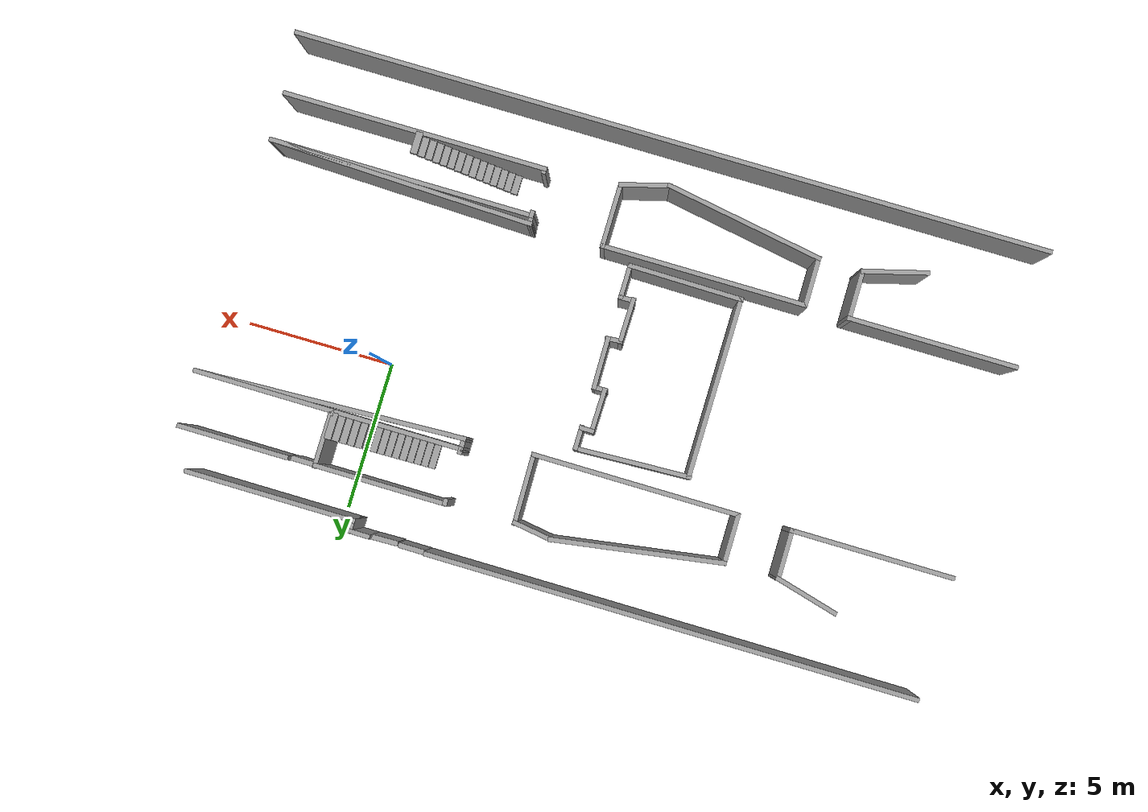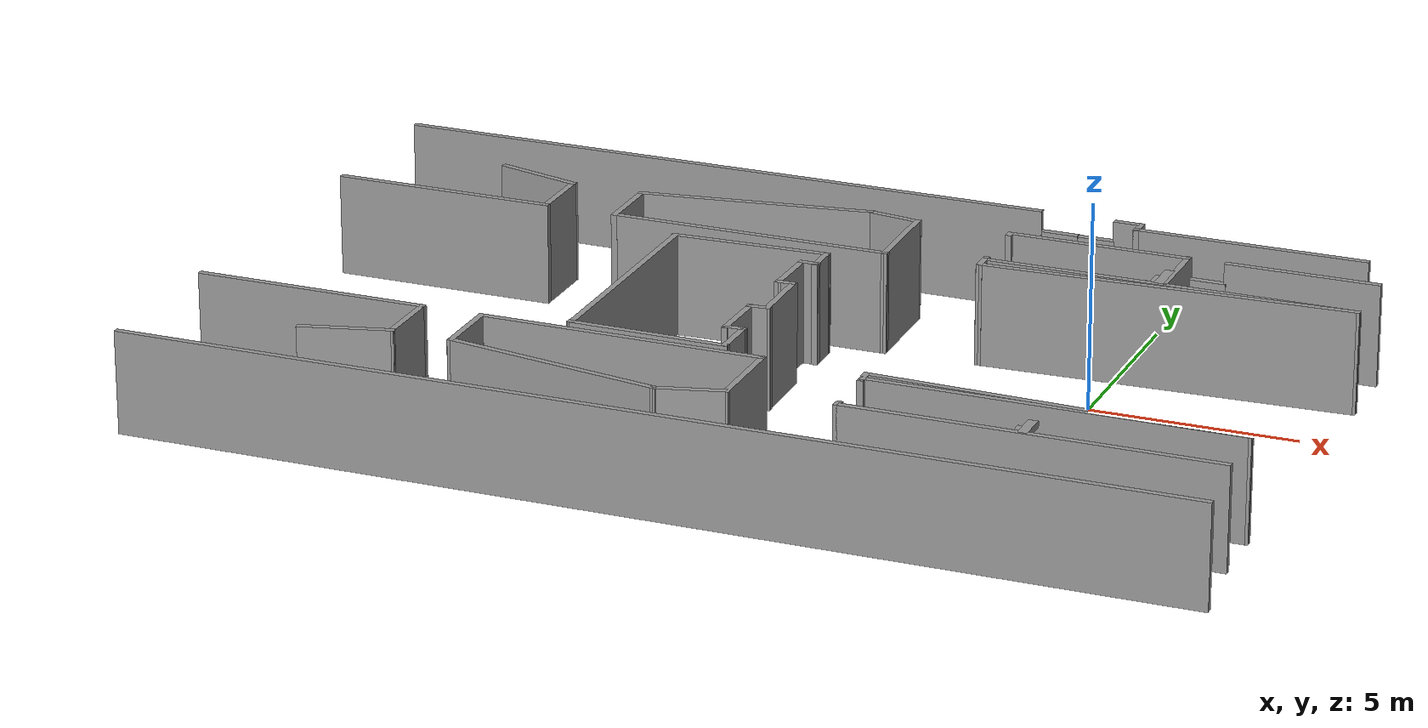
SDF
<?xml version='1.0'?>
<sdf version='1.7'>
  <model name='Nuri3rd'>
    <pose>-6.98701 -1.9804 0 0 -0 0</pose>
    <link name='Door_1'>
      <collision name='Door_1_Collision'>
        <geometry>
          <box>
            <size>0.9 0.17 2</size>
          </box>
        </geometry>
        <pose>0 0 1 0 -0 0</pose>
      </collision>
      <visual name='Door_1_Visual'>
        <pose>0 0 1 0 -0 0</pose>
        <geometry>
          <box>
            <size>0.9 0.17 2</size>
          </box>
        </geometry>
        <material>
          <script>
            <uri>file://media/materials/scripts/gazebo.material</uri>
            <name>Gazebo/Grey</name>
          </script>
        </material>
      </visual>
      <pose>5.26471 7.52409 0 0 -0 -3.12165</pose>
    </link>
    <link name='Door_2'>
      <collision name='Door_2_Collision'>
        <geometry>
          <box>
            <size>0.9 0.17 2</size>
          </box>
        </geometry>
        <pose>0 0 1 0 -0 0</pose>
      </collision>
      <visual name='Door_2_Visual'>
        <pose>0 0 1 0 -0 0</pose>
        <geometry>
          <box>
            <size>0.9 0.17 2</size>
          </box>
        </geometry>
        <material>
          <script>
            <uri>file://media/materials/scripts/gazebo.material</uri>
            <name>Gazebo/Grey</name>
          </script>
        </material>
      </visual>
      <pose>4.34319 7.54075 0 0 -0 0</pose>
    </link>
    <link name='Door_3'>
      <collision name='Door_3_Collision'>
        <geometry>
          <box>
            <size>0.9 0.17 2</size>
          </box>
        </geometry>
        <pose>0 0 1 0 -0 0</pose>
      </collision>
      <visual name='Door_3_Visual'>
        <pose>0 0 1 0 -0 0</pose>
        <geometry>
          <box>
            <size>0.9 0.17 2</size>
          </box>
        </geometry>
        <material>
          <script>
            <uri>file://media/materials/scripts/gazebo.material</uri>
            <name>Gazebo/Grey</name>
          </script>
        </material>
      </visual>
      <pose>8.55431 5.83089 0 0 -0 0</pose>
    </link>
    <link name='Stairs_0'>
      <visual name='Stairs_0_Visual_0'>
        <pose>4.68372 4.4736 0.083333 0 -0 1.5708</pose>
        <geometry>
          <box>
            <size>0.885649 0.231046 0.166667</size>
          </box>
        </geometry>
        <material>
          <script>
            <uri>file://media/materials/scripts/gazebo.material</uri>
            <name>Gazebo/Grey</name>
          </script>
          <ambient>1 1 1 1</ambient>
        </material>
        <meta>
          <layer>0</layer>
        </meta>
      </visual>
      <collision name='Stairs_0_Collision_0'>
        <geometry>
          <box>
            <size>0.885649 0.231046 0.166667</size>
          </box>
        </geometry>
        <pose>4.68372 4.4736 0.083333 0 -0 1.5708</pose>
      </collision>
      <visual name='Stairs_0_Visual_1'>
        <pose>4.91477 4.4736 0.25 0 -0 1.5708</pose>
        <geometry>
          <box>
            <size>0.885649 0.231046 0.166667</size>
          </box>
        </geometry>
        <material>
          <script>
            <uri>file://media/materials/scripts/gazebo.material</uri>
            <name>Gazebo/Grey</name>
          </script>
          <ambient>1 1 1 1</ambient>
        </material>
        <meta>
          <layer>0</layer>
        </meta>
      </visual>
      <collision name='Stairs_0_Collision_1'>
        <geometry>
          <box>
            <size>0.885649 0.231046 0.166667</size>
          </box>
        </geometry>
        <pose>4.91477 4.4736 0.25 0 -0 1.5708</pose>
      </collision>
      <visual name='Stairs_0_Visual_2'>
        <pose>5.14581 4.47361 0.416667 0 -0 1.5708</pose>
        <geometry>
          <box>
            <size>0.885649 0.231046 0.166667</size>
          </box>
        </geometry>
        <material>
          <script>
            <uri>file://media/materials/scripts/gazebo.material</uri>
            <name>Gazebo/Grey</name>
          </script>
          <ambient>1 1 1 1</ambient>
        </material>
        <meta>
          <layer>0</layer>
        </meta>
      </visual>
      <collision name='Stairs_0_Collision_2'>
        <geometry>
          <box>
            <size>0.885649 0.231046 0.166667</size>
          </box>
        </geometry>
        <pose>5.14581 4.47361 0.416667 0 -0 1.5708</pose>
      </collision>
      <visual name='Stairs_0_Visual_3'>
        <pose>5.37686 4.47361 0.583333 0 -0 1.5708</pose>
        <geometry>
          <box>
            <size>0.885649 0.231046 0.166667</size>
          </box>
        </geometry>
        <material>
          <script>
            <uri>file://media/materials/scripts/gazebo.material</uri>
            <name>Gazebo/Grey</name>
          </script>
          <ambient>1 1 1 1</ambient>
        </material>
        <meta>
          <layer>0</layer>
        </meta>
      </visual>
      <collision name='Stairs_0_Collision_3'>
        <geometry>
          <box>
            <size>0.885649 0.231046 0.166667</size>
          </box>
        </geometry>
        <pose>5.37686 4.47361 0.583333 0 -0 1.5708</pose>
      </collision>
      <visual name='Stairs_0_Visual_4'>
        <pose>5.60791 4.47361 0.75 0 -0 1.5708</pose>
        <geometry>
          <box>
            <size>0.885649 0.231046 0.166667</size>
          </box>
        </geometry>
        <material>
          <script>
            <uri>file://media/materials/scripts/gazebo.material</uri>
            <name>Gazebo/Grey</name>
          </script>
          <ambient>1 1 1 1</ambient>
        </material>
        <meta>
          <layer>0</layer>
        </meta>
      </visual>
      <collision name='Stairs_0_Collision_4'>
        <geometry>
          <box>
            <size>0.885649 0.231046 0.166667</size>
          </box>
        </geometry>
        <pose>5.60791 4.47361 0.75 0 -0 1.5708</pose>
      </collision>
      <visual name='Stairs_0_Visual_5'>
        <pose>5.83895 4.47361 0.916667 0 -0 1.5708</pose>
        <geometry>
          <box>
            <size>0.885649 0.231046 0.166667</size>
          </box>
        </geometry>
        <material>
          <script>
            <uri>file://media/materials/scripts/gazebo.material</uri>
            <name>Gazebo/Grey</name>
          </script>
          <ambient>1 1 1 1</ambient>
        </material>
        <meta>
          <layer>0</layer>
        </meta>
      </visual>
      <collision name='Stairs_0_Collision_5'>
        <geometry>
          <box>
            <size>0.885649 0.231046 0.166667</size>
          </box>
        </geometry>
        <pose>5.83895 4.47361 0.916667 0 -0 1.5708</pose>
      </collision>
      <visual name='Stairs_0_Visual_6'>
        <pose>6.07 4.47361 1.08333 0 -0 1.5708</pose>
        <geometry>
          <box>
            <size>0.885649 0.231046 0.166667</size>
          </box>
        </geometry>
        <material>
          <script>
            <uri>file://media/materials/scripts/gazebo.material</uri>
            <name>Gazebo/Grey</name>
          </script>
          <ambient>1 1 1 1</ambient>
        </material>
        <meta>
          <layer>0</layer>
        </meta>
      </visual>
      <collision name='Stairs_0_Collision_6'>
        <geometry>
          <box>
            <size>0.885649 0.231046 0.166667</size>
          </box>
        </geometry>
        <pose>6.07 4.47361 1.08333 0 -0 1.5708</pose>
      </collision>
      <visual name='Stairs_0_Visual_7'>
        <pose>6.30105 4.47361 1.25 0 -0 1.5708</pose>
        <geometry>
          <box>
            <size>0.885649 0.231046 0.166667</size>
          </box>
        </geometry>
        <material>
          <script>
            <uri>file://media/materials/scripts/gazebo.material</uri>
            <name>Gazebo/Grey</name>
          </script>
          <ambient>1 1 1 1</ambient>
        </material>
        <meta>
          <layer>0</layer>
        </meta>
      </visual>
      <collision name='Stairs_0_Collision_7'>
        <geometry>
          <box>
            <size>0.885649 0.231046 0.166667</size>
          </box>
        </geometry>
        <pose>6.30105 4.47361 1.25 0 -0 1.5708</pose>
      </collision>
      <visual name='Stairs_0_Visual_8'>
        <pose>6.53209 4.47361 1.41667 0 -0 1.5708</pose>
        <geometry>
          <box>
            <size>0.885649 0.231046 0.166667</size>
          </box>
        </geometry>
        <material>
          <script>
            <uri>file://media/materials/scripts/gazebo.material</uri>
            <name>Gazebo/Grey</name>
          </script>
          <ambient>1 1 1 1</ambient>
        </material>
        <meta>
          <layer>0</layer>
        </meta>
      </visual>
      <collision name='Stairs_0_Collision_8'>
        <geometry>
          <box>
            <size>0.885649 0.231046 0.166667</size>
          </box>
        </geometry>
        <pose>6.53209 4.47361 1.41667 0 -0 1.5708</pose>
      </collision>
      <visual name='Stairs_0_Visual_9'>
        <pose>6.76314 4.47361 1.58333 0 -0 1.5708</pose>
        <geometry>
          <box>
            <size>0.885649 0.231046 0.166667</size>
          </box>
        </geometry>
        <material>
          <script>
            <uri>file://media/materials/scripts/gazebo.material</uri>
            <name>Gazebo/Grey</name>
          </script>
          <ambient>1 1 1 1</ambient>
        </material>
        <meta>
          <layer>0</layer>
        </meta>
      </visual>
      <collision name='Stairs_0_Collision_9'>
        <geometry>
          <box>
            <size>0.885649 0.231046 0.166667</size>
          </box>
        </geometry>
        <pose>6.76314 4.47361 1.58333 0 -0 1.5708</pose>
      </collision>
      <visual name='Stairs_0_Visual_10'>
        <pose>6.99419 4.47361 1.75 0 -0 1.5708</pose>
        <geometry>
          <box>
            <size>0.885649 0.231046 0.166667</size>
          </box>
        </geometry>
        <material>
          <script>
            <uri>file://media/materials/scripts/gazebo.material</uri>
            <name>Gazebo/Grey</name>
          </script>
          <ambient>1 1 1 1</ambient>
        </material>
        <meta>
          <layer>0</layer>
        </meta>
      </visual>
      <collision name='Stairs_0_Collision_10'>
        <geometry>
          <box>
            <size>0.885649 0.231046 0.166667</size>
          </box>
        </geometry>
        <pose>6.99419 4.47361 1.75 0 -0 1.5708</pose>
      </collision>
      <visual name='Stairs_0_Visual_11'>
        <pose>7.22523 4.47361 1.91667 0 -0 1.5708</pose>
        <geometry>
          <box>
            <size>0.885649 0.231046 0.166667</size>
          </box>
        </geometry>
        <material>
          <script>
            <uri>file://media/materials/scripts/gazebo.material</uri>
            <name>Gazebo/Grey</name>
          </script>
          <ambient>1 1 1 1</ambient>
        </material>
        <meta>
          <layer>0</layer>
        </meta>
      </visual>
      <collision name='Stairs_0_Collision_11'>
        <geometry>
          <box>
            <size>0.885649 0.231046 0.166667</size>
          </box>
        </geometry>
        <pose>7.22523 4.47361 1.91667 0 -0 1.5708</pose>
      </collision>
      <visual name='Stairs_0_Visual_12'>
        <pose>7.45628 4.47361 2.08333 0 -0 1.5708</pose>
        <geometry>
          <box>
            <size>0.885649 0.231046 0.166667</size>
          </box>
        </geometry>
        <material>
          <script>
            <uri>file://media/materials/scripts/gazebo.material</uri>
            <name>Gazebo/Grey</name>
          </script>
          <ambient>1 1 1 1</ambient>
        </material>
        <meta>
          <layer>0</layer>
        </meta>
      </visual>
      <collision name='Stairs_0_Collision_12'>
        <geometry>
          <box>
            <size>0.885649 0.231046 0.166667</size>
          </box>
        </geometry>
        <pose>7.45628 4.47361 2.08333 0 -0 1.5708</pose>
      </collision>
      <visual name='Stairs_0_Visual_13'>
        <pose>7.68733 4.47361 2.25 0 -0 1.5708</pose>
        <geometry>
          <box>
            <size>0.885649 0.231046 0.166667</size>
          </box>
        </geometry>
        <material>
          <script>
            <uri>file://media/materials/scripts/gazebo.material</uri>
            <name>Gazebo/Grey</name>
          </script>
          <ambient>1 1 1 1</ambient>
        </material>
        <meta>
          <layer>0</layer>
        </meta>
      </visual>
      <collision name='Stairs_0_Collision_13'>
        <geometry>
          <box>
            <size>0.885649 0.231046 0.166667</size>
          </box>
        </geometry>
        <pose>7.68733 4.47361 2.25 0 -0 1.5708</pose>
      </collision>
      <visual name='Stairs_0_Visual_14'>
        <pose>7.91837 4.47361 2.41667 0 -0 1.5708</pose>
        <geometry>
          <box>
            <size>0.885649 0.231046 0.166667</size>
          </box>
        </geometry>
        <material>
          <script>
            <uri>file://media/materials/scripts/gazebo.material</uri>
            <name>Gazebo/Grey</name>
          </script>
          <ambient>1 1 1 1</ambient>
        </material>
        <meta>
          <layer>0</layer>
        </meta>
      </visual>
      <collision name='Stairs_0_Collision_14'>
        <geometry>
          <box>
            <size>0.885649 0.231046 0.166667</size>
          </box>
        </geometry>
        <pose>7.91837 4.47361 2.41667 0 -0 1.5708</pose>
      </collision>
    </link>
    <link name='Stairs_1'>
      <visual name='Stairs_1_Visual_0'>
        <pose>4.69852 -5.14387 0.083333 0 -0 1.5708</pose>
        <geometry>
          <box>
            <size>0.745563 0.233333 0.166667</size>
          </box>
        </geometry>
        <material>
          <script>
            <uri>file://media/materials/scripts/gazebo.material</uri>
            <name>Gazebo/Grey</name>
          </script>
          <ambient>1 1 1 1</ambient>
        </material>
        <meta>
          <layer>0</layer>
        </meta>
      </visual>
      <collision name='Stairs_1_Collision_0'>
        <geometry>
          <box>
            <size>0.745563 0.233333 0.166667</size>
          </box>
        </geometry>
        <pose>4.69852 -5.14387 0.083333 0 -0 1.5708</pose>
      </collision>
      <visual name='Stairs_1_Visual_1'>
        <pose>4.93185 -5.14387 0.25 0 -0 1.5708</pose>
        <geometry>
          <box>
            <size>0.745563 0.233333 0.166667</size>
          </box>
        </geometry>
        <material>
          <script>
            <uri>file://media/materials/scripts/gazebo.material</uri>
            <name>Gazebo/Grey</name>
          </script>
          <ambient>1 1 1 1</ambient>
        </material>
        <meta>
          <layer>0</layer>
        </meta>
      </visual>
      <collision name='Stairs_1_Collision_1'>
        <geometry>
          <box>
            <size>0.745563 0.233333 0.166667</size>
          </box>
        </geometry>
        <pose>4.93185 -5.14387 0.25 0 -0 1.5708</pose>
      </collision>
      <visual name='Stairs_1_Visual_2'>
        <pose>5.16519 -5.14387 0.416667 0 -0 1.5708</pose>
        <geometry>
          <box>
            <size>0.745563 0.233333 0.166667</size>
          </box>
        </geometry>
        <material>
          <script>
            <uri>file://media/materials/scripts/gazebo.material</uri>
            <name>Gazebo/Grey</name>
          </script>
          <ambient>1 1 1 1</ambient>
        </material>
        <meta>
          <layer>0</layer>
        </meta>
      </visual>
      <collision name='Stairs_1_Collision_2'>
        <geometry>
          <box>
            <size>0.745563 0.233333 0.166667</size>
          </box>
        </geometry>
        <pose>5.16519 -5.14387 0.416667 0 -0 1.5708</pose>
      </collision>
      <visual name='Stairs_1_Visual_3'>
        <pose>5.39852 -5.14387 0.583333 0 -0 1.5708</pose>
        <geometry>
          <box>
            <size>0.745563 0.233333 0.166667</size>
          </box>
        </geometry>
        <material>
          <script>
            <uri>file://media/materials/scripts/gazebo.material</uri>
            <name>Gazebo/Grey</name>
          </script>
          <ambient>1 1 1 1</ambient>
        </material>
        <meta>
          <layer>0</layer>
        </meta>
      </visual>
      <collision name='Stairs_1_Collision_3'>
        <geometry>
          <box>
            <size>0.745563 0.233333 0.166667</size>
          </box>
        </geometry>
        <pose>5.39852 -5.14387 0.583333 0 -0 1.5708</pose>
      </collision>
      <visual name='Stairs_1_Visual_4'>
        <pose>5.63185 -5.14387 0.75 0 -0 1.5708</pose>
        <geometry>
          <box>
            <size>0.745563 0.233333 0.166667</size>
          </box>
        </geometry>
        <material>
          <script>
            <uri>file://media/materials/scripts/gazebo.material</uri>
            <name>Gazebo/Grey</name>
          </script>
          <ambient>1 1 1 1</ambient>
        </material>
        <meta>
          <layer>0</layer>
        </meta>
      </visual>
      <collision name='Stairs_1_Collision_4'>
        <geometry>
          <box>
            <size>0.745563 0.233333 0.166667</size>
          </box>
        </geometry>
        <pose>5.63185 -5.14387 0.75 0 -0 1.5708</pose>
      </collision>
      <visual name='Stairs_1_Visual_5'>
        <pose>5.86519 -5.14387 0.916667 0 -0 1.5708</pose>
        <geometry>
          <box>
            <size>0.745563 0.233333 0.166667</size>
          </box>
        </geometry>
        <material>
          <script>
            <uri>file://media/materials/scripts/gazebo.material</uri>
            <name>Gazebo/Grey</name>
          </script>
          <ambient>1 1 1 1</ambient>
        </material>
        <meta>
          <layer>0</layer>
        </meta>
      </visual>
      <collision name='Stairs_1_Collision_5'>
        <geometry>
          <box>
            <size>0.745563 0.233333 0.166667</size>
          </box>
        </geometry>
        <pose>5.86519 -5.14387 0.916667 0 -0 1.5708</pose>
      </collision>
      <visual name='Stairs_1_Visual_6'>
        <pose>6.09852 -5.14387 1.08333 0 -0 1.5708</pose>
        <geometry>
          <box>
            <size>0.745563 0.233333 0.166667</size>
          </box>
        </geometry>
        <material>
          <script>
            <uri>file://media/materials/scripts/gazebo.material</uri>
            <name>Gazebo/Grey</name>
          </script>
          <ambient>1 1 1 1</ambient>
        </material>
        <meta>
          <layer>0</layer>
        </meta>
      </visual>
      <collision name='Stairs_1_Collision_6'>
        <geometry>
          <box>
            <size>0.745563 0.233333 0.166667</size>
          </box>
        </geometry>
        <pose>6.09852 -5.14387 1.08333 0 -0 1.5708</pose>
      </collision>
      <visual name='Stairs_1_Visual_7'>
        <pose>6.33185 -5.14387 1.25 0 -0 1.5708</pose>
        <geometry>
          <box>
            <size>0.745563 0.233333 0.166667</size>
          </box>
        </geometry>
        <material>
          <script>
            <uri>file://media/materials/scripts/gazebo.material</uri>
            <name>Gazebo/Grey</name>
          </script>
          <ambient>1 1 1 1</ambient>
        </material>
        <meta>
          <layer>0</layer>
        </meta>
      </visual>
      <collision name='Stairs_1_Collision_7'>
        <geometry>
          <box>
            <size>0.745563 0.233333 0.166667</size>
          </box>
        </geometry>
        <pose>6.33185 -5.14387 1.25 0 -0 1.5708</pose>
      </collision>
      <visual name='Stairs_1_Visual_8'>
        <pose>6.56519 -5.14387 1.41667 0 -0 1.5708</pose>
        <geometry>
          <box>
            <size>0.745563 0.233333 0.166667</size>
          </box>
        </geometry>
        <material>
          <script>
            <uri>file://media/materials/scripts/gazebo.material</uri>
            <name>Gazebo/Grey</name>
          </script>
          <ambient>1 1 1 1</ambient>
        </material>
        <meta>
          <layer>0</layer>
        </meta>
      </visual>
      <collision name='Stairs_1_Collision_8'>
        <geometry>
          <box>
            <size>0.745563 0.233333 0.166667</size>
          </box>
        </geometry>
        <pose>6.56519 -5.14387 1.41667 0 -0 1.5708</pose>
      </collision>
      <visual name='Stairs_1_Visual_9'>
        <pose>6.79852 -5.14387 1.58333 0 -0 1.5708</pose>
        <geometry>
          <box>
            <size>0.745563 0.233333 0.166667</size>
          </box>
        </geometry>
        <material>
          <script>
            <uri>file://media/materials/scripts/gazebo.material</uri>
            <name>Gazebo/Grey</name>
          </script>
          <ambient>1 1 1 1</ambient>
        </material>
        <meta>
          <layer>0</layer>
        </meta>
      </visual>
      <collision name='Stairs_1_Collision_9'>
        <geometry>
          <box>
            <size>0.745563 0.233333 0.166667</size>
          </box>
        </geometry>
        <pose>6.79852 -5.14387 1.58333 0 -0 1.5708</pose>
      </collision>
      <visual name='Stairs_1_Visual_10'>
        <pose>7.03185 -5.14387 1.75 0 -0 1.5708</pose>
        <geometry>
          <box>
            <size>0.745563 0.233333 0.166667</size>
          </box>
        </geometry>
        <material>
          <script>
            <uri>file://media/materials/scripts/gazebo.material</uri>
            <name>Gazebo/Grey</name>
          </script>
          <ambient>1 1 1 1</ambient>
        </material>
        <meta>
          <layer>0</layer>
        </meta>
      </visual>
      <collision name='Stairs_1_Collision_10'>
        <geometry>
          <box>
            <size>0.745563 0.233333 0.166667</size>
          </box>
        </geometry>
        <pose>7.03185 -5.14387 1.75 0 -0 1.5708</pose>
      </collision>
      <visual name='Stairs_1_Visual_11'>
        <pose>7.26519 -5.14387 1.91667 0 -0 1.5708</pose>
        <geometry>
          <box>
            <size>0.745563 0.233333 0.166667</size>
          </box>
        </geometry>
        <material>
          <script>
            <uri>file://media/materials/scripts/gazebo.material</uri>
            <name>Gazebo/Grey</name>
          </script>
          <ambient>1 1 1 1</ambient>
        </material>
        <meta>
          <layer>0</layer>
        </meta>
      </visual>
      <collision name='Stairs_1_Collision_11'>
        <geometry>
          <box>
            <size>0.745563 0.233333 0.166667</size>
          </box>
        </geometry>
        <pose>7.26519 -5.14387 1.91667 0 -0 1.5708</pose>
      </collision>
      <visual name='Stairs_1_Visual_12'>
        <pose>7.49852 -5.14387 2.08333 0 -0 1.5708</pose>
        <geometry>
          <box>
            <size>0.745563 0.233333 0.166667</size>
          </box>
        </geometry>
        <material>
          <script>
            <uri>file://media/materials/scripts/gazebo.material</uri>
            <name>Gazebo/Grey</name>
          </script>
          <ambient>1 1 1 1</ambient>
        </material>
        <meta>
          <layer>0</layer>
        </meta>
      </visual>
      <collision name='Stairs_1_Collision_12'>
        <geometry>
          <box>
            <size>0.745563 0.233333 0.166667</size>
          </box>
        </geometry>
        <pose>7.49852 -5.14387 2.08333 0 -0 1.5708</pose>
      </collision>
      <visual name='Stairs_1_Visual_13'>
        <pose>7.73185 -5.14387 2.25 0 -0 1.5708</pose>
        <geometry>
          <box>
            <size>0.745563 0.233333 0.166667</size>
          </box>
        </geometry>
        <material>
          <script>
            <uri>file://media/materials/scripts/gazebo.material</uri>
            <name>Gazebo/Grey</name>
          </script>
          <ambient>1 1 1 1</ambient>
        </material>
        <meta>
          <layer>0</layer>
        </meta>
      </visual>
      <collision name='Stairs_1_Collision_13'>
        <geometry>
          <box>
            <size>0.745563 0.233333 0.166667</size>
          </box>
        </geometry>
        <pose>7.73185 -5.14387 2.25 0 -0 1.5708</pose>
      </collision>
      <visual name='Stairs_1_Visual_14'>
        <pose>7.96519 -5.14387 2.41667 0 -0 1.5708</pose>
        <geometry>
          <box>
            <size>0.745563 0.233333 0.166667</size>
          </box>
        </geometry>
        <material>
          <script>
            <uri>file://media/materials/scripts/gazebo.material</uri>
            <name>Gazebo/Grey</name>
          </script>
          <ambient>1 1 1 1</ambient>
        </material>
        <meta>
          <layer>0</layer>
        </meta>
      </visual>
      <collision name='Stairs_1_Collision_14'>
        <geometry>
          <box>
            <size>0.745563 0.233333 0.166667</size>
          </box>
        </geometry>
        <pose>7.96519 -5.14387 2.41667 0 -0 1.5708</pose>
      </collision>
    </link>
    <link name='Wall_100'>
      <collision name='Wall_100_Collision'>
        <geometry>
          <box>
            <size>5.5327 0.15 2.5</size>
          </box>
        </geometry>
        <pose>0 0 1.25 0 -0 0</pose>
      </collision>
      <visual name='Wall_100_Visual'>
        <pose>0 0 1.25 0 -0 0</pose>
        <geometry>
          <box>
            <size>5.5327 0.15 2.5</size>
          </box>
        </geometry>
        <material>
          <script>
            <uri>file://media/materials/scripts/gazebo.material</uri>
            <name>Gazebo/Grey</name>
          </script>
          <ambient>1 1 1 1</ambient>
        </material>
        <meta>
          <layer>0</layer>
        </meta>
      </visual>
      <pose>-3.00088 -5.66274 0 0 -0 2.97094</pose>
    </link>
    <link name='Wall_102'>
      <collision name='Wall_102_Collision'>
        <geometry>
          <box>
            <size>0.444131 0.15 2.5</size>
          </box>
        </geometry>
        <pose>0 0 1.25 0 -0 0</pose>
      </collision>
      <visual name='Wall_102_Visual'>
        <pose>0 0 1.25 0 -0 0</pose>
        <geometry>
          <box>
            <size>0.444131 0.15 2.5</size>
          </box>
        </geometry>
        <material>
          <script>
            <uri>file://media/materials/scripts/gazebo.material</uri>
            <name>Gazebo/Grey</name>
          </script>
          <ambient>1 1 1 1</ambient>
        </material>
        <meta>
          <layer>0</layer>
        </meta>
      </visual>
      <pose>3.6834 -3.7829 0 0 -0 1.64952</pose>
    </link>
    <link name='Wall_104'>
      <collision name='Wall_104_Collision'>
        <geometry>
          <box>
            <size>9 0.15 2.5</size>
          </box>
        </geometry>
        <pose>0 0 1.25 0 -0 0</pose>
      </collision>
      <visual name='Wall_104_Visual'>
        <pose>0 0 1.25 0 -0 0</pose>
        <geometry>
          <box>
            <size>9 0.15 2.5</size>
          </box>
        </geometry>
        <material>
          <script>
            <uri>file://media/materials/scripts/gazebo.material</uri>
            <name>Gazebo/Grey</name>
          </script>
          <ambient>1 1 1 1</ambient>
        </material>
        <meta>
          <layer>0</layer>
        </meta>
      </visual>
      <pose>8.11996 -3.90638 0 0 -0 0</pose>
    </link>
    <link name='Wall_111'>
      <collision name='Wall_111_Collision'>
        <geometry>
          <box>
            <size>0.5 0.15 2.5</size>
          </box>
        </geometry>
        <pose>0 0 1.25 0 -0 0</pose>
      </collision>
      <visual name='Wall_111_Visual'>
        <pose>0 0 1.25 0 -0 0</pose>
        <geometry>
          <box>
            <size>0.5 0.15 2.5</size>
          </box>
        </geometry>
        <material>
          <script>
            <uri>file://media/materials/scripts/gazebo.material</uri>
            <name>Gazebo/Grey</name>
          </script>
          <ambient>1 1 1 1</ambient>
        </material>
        <meta>
          <layer>0</layer>
        </meta>
      </visual>
      <pose>3.70279 3.82642 0 0 -0 -1.5708</pose>
    </link>
    <link name='Wall_112'>
      <collision name='Wall_112_Collision'>
        <geometry>
          <box>
            <size>9.10684 0.15 2.5</size>
          </box>
        </geometry>
        <pose>0 0 1.25 0 -0 0</pose>
      </collision>
      <visual name='Wall_112_Visual'>
        <pose>0 0 1.25 0 -0 0</pose>
        <geometry>
          <box>
            <size>9.10684 0.15 2.5</size>
          </box>
        </geometry>
        <material>
          <script>
            <uri>file://media/materials/scripts/gazebo.material</uri>
            <name>Gazebo/Grey</name>
          </script>
          <ambient>1 1 1 1</ambient>
        </material>
        <meta>
          <layer>0</layer>
        </meta>
      </visual>
      <pose>8.17779 3.82642 0 0 -0 0.039086</pose>
    </link>
    <link name='Wall_114'>
      <collision name='Wall_114_Collision'>
        <geometry>
          <box>
            <size>9.02724 0.15 2.5</size>
          </box>
        </geometry>
        <pose>0 0 1.25 0 -0 0</pose>
      </collision>
      <visual name='Wall_114_Visual'>
        <pose>0 0 1.25 0 -0 0</pose>
        <geometry>
          <box>
            <size>9.02724 0.15 2.5</size>
          </box>
        </geometry>
        <material>
          <script>
            <uri>file://media/materials/scripts/gazebo.material</uri>
            <name>Gazebo/Grey</name>
          </script>
          <ambient>1 1 1 1</ambient>
        </material>
        <meta>
          <layer>0</layer>
        </meta>
      </visual>
      <pose>8.1084 -3.77134 0 0 -0 -0.03043</pose>
    </link>
    <link name='Wall_116'>
      <collision name='Wall_116_Collision'>
        <geometry>
          <box>
            <size>0.25 0.15 2.5</size>
          </box>
        </geometry>
        <pose>0 0 1.25 0 -0 0</pose>
      </collision>
      <visual name='Wall_116_Visual'>
        <pose>0 0 1.25 0 -0 0</pose>
        <geometry>
          <box>
            <size>0.25 0.15 2.5</size>
          </box>
        </geometry>
        <material>
          <script>
            <uri>file://media/materials/scripts/gazebo.material</uri>
            <name>Gazebo/Grey</name>
          </script>
          <ambient>1 1 1 1</ambient>
        </material>
        <meta>
          <layer>0</layer>
        </meta>
      </visual>
      <pose>3.69496 -3.95638 0 0 -0 -1.5708</pose>
    </link>
    <link name='Wall_119'>
      <collision name='Wall_119_Collision'>
        <geometry>
          <box>
            <size>9 0.15 2.5</size>
          </box>
        </geometry>
        <pose>0 0 1.25 0 -0 0</pose>
      </collision>
      <visual name='Wall_119_Visual'>
        <pose>0 0 1.25 0 -0 0</pose>
        <geometry>
          <box>
            <size>9 0.15 2.5</size>
          </box>
        </geometry>
        <material>
          <script>
            <uri>file://media/materials/scripts/gazebo.material</uri>
            <name>Gazebo/Grey</name>
          </script>
          <ambient>1 1 1 1</ambient>
        </material>
        <meta>
          <layer>0</layer>
        </meta>
      </visual>
      <pose>8.1431 -5.50239 0 0 -0 0</pose>
    </link>
    <link name='Wall_121'>
      <collision name='Wall_121_Collision'>
        <geometry>
          <box>
            <size>0.25 0.15 2.5</size>
          </box>
        </geometry>
        <pose>0 0 1.25 0 -0 0</pose>
      </collision>
      <visual name='Wall_121_Visual'>
        <pose>0 0 1.25 0 -0 0</pose>
        <geometry>
          <box>
            <size>0.25 0.15 2.5</size>
          </box>
        </geometry>
        <material>
          <script>
            <uri>file://media/materials/scripts/gazebo.material</uri>
            <name>Gazebo/Grey</name>
          </script>
          <ambient>1 1 1 1</ambient>
        </material>
        <meta>
          <layer>0</layer>
        </meta>
      </visual>
      <pose>3.71809 -5.45239 0 0 -0 1.5708</pose>
    </link>
    <link name='Wall_123'>
      <collision name='Wall_123_Collision'>
        <geometry>
          <box>
            <size>25.75 0.15 2.5</size>
          </box>
        </geometry>
        <pose>0 0 1.25 0 -0 0</pose>
      </collision>
      <visual name='Wall_123_Visual'>
        <pose>0 0 1.25 0 -0 0</pose>
        <geometry>
          <box>
            <size>25.75 0.15 2.5</size>
          </box>
        </geometry>
        <material>
          <script>
            <uri>file://media/materials/scripts/gazebo.material</uri>
            <name>Gazebo/Grey</name>
          </script>
          <ambient>1 1 1 1</ambient>
        </material>
        <meta>
          <layer>0</layer>
        </meta>
      </visual>
      <pose>-0 -7.53442 0 0 -0 0</pose>
    </link>
    <link name='Wall_125'>
      <collision name='Wall_125_Collision'>
        <geometry>
          <box>
            <size>1.75 0.15 2.5</size>
          </box>
        </geometry>
        <pose>0 0 1.25 0 -0 0</pose>
      </collision>
      <visual name='Wall_125_Visual'>
        <pose>0 0 1.25 0 -0 0</pose>
        <geometry>
          <box>
            <size>1.75 0.15 2.5</size>
          </box>
        </geometry>
        <material>
          <script>
            <uri>file://media/materials/scripts/gazebo.material</uri>
            <name>Gazebo/Grey</name>
          </script>
          <ambient>1 1 1 1</ambient>
        </material>
        <meta>
          <layer>0</layer>
        </meta>
      </visual>
      <pose>-7.24297 4.30046 0 0 -0 -1.5708</pose>
    </link>
    <link name='Wall_127'>
      <collision name='Wall_127_Collision'>
        <geometry>
          <box>
            <size>2.25 0.15 2.5</size>
          </box>
        </geometry>
        <pose>0 0 1.25 0 -0 0</pose>
      </collision>
      <visual name='Wall_127_Visual'>
        <pose>0 0 1.25 0 -0 0</pose>
        <geometry>
          <box>
            <size>2.25 0.15 2.5</size>
          </box>
        </geometry>
        <material>
          <script>
            <uri>file://media/materials/scripts/gazebo.material</uri>
            <name>Gazebo/Grey</name>
          </script>
          <ambient>1 1 1 1</ambient>
        </material>
        <meta>
          <layer>0</layer>
        </meta>
      </visual>
      <pose>-8.25719 5.37222 0 0 -0 2.87979</pose>
    </link>
    <link name='Wall_129'>
      <collision name='Wall_129_Collision'>
        <geometry>
          <box>
            <size>5.5 0.15 2.5</size>
          </box>
        </geometry>
        <pose>0 0 1.25 0 -0 0</pose>
      </collision>
      <visual name='Wall_129_Visual'>
        <pose>0 0 1.25 0 -0 0</pose>
        <geometry>
          <box>
            <size>5.5 0.15 2.5</size>
          </box>
        </geometry>
        <material>
          <script>
            <uri>file://media/materials/scripts/gazebo.material</uri>
            <name>Gazebo/Grey</name>
          </script>
          <ambient>1 1 1 1</ambient>
        </material>
        <meta>
          <layer>0</layer>
        </meta>
      </visual>
      <pose>-9.91797 3.50046 0 0 -0 3.14159</pose>
    </link>
    <link name='Wall_131'>
      <collision name='Wall_131_Collision'>
        <geometry>
          <box>
            <size>5.75 0.15 2.5</size>
          </box>
        </geometry>
        <pose>0 0 1.25 0 -0 0</pose>
      </collision>
      <visual name='Wall_131_Visual'>
        <pose>0 0 1.25 0 -0 0</pose>
        <geometry>
          <box>
            <size>5.75 0.15 2.5</size>
          </box>
        </geometry>
        <material>
          <script>
            <uri>file://media/materials/scripts/gazebo.material</uri>
            <name>Gazebo/Grey</name>
          </script>
          <ambient>1 1 1 1</ambient>
        </material>
        <meta>
          <layer>0</layer>
        </meta>
      </visual>
      <pose>-9.93656 -3.59781 0 0 -0 3.14159</pose>
    </link>
    <link name='Wall_133'>
      <collision name='Wall_133_Collision'>
        <geometry>
          <box>
            <size>1.75 0.15 2.5</size>
          </box>
        </geometry>
        <pose>0 0 1.25 0 -0 0</pose>
      </collision>
      <visual name='Wall_133_Visual'>
        <pose>0 0 1.25 0 -0 0</pose>
        <geometry>
          <box>
            <size>1.75 0.15 2.5</size>
          </box>
        </geometry>
        <material>
          <script>
            <uri>file://media/materials/scripts/gazebo.material</uri>
            <name>Gazebo/Grey</name>
          </script>
          <ambient>1 1 1 1</ambient>
        </material>
        <meta>
          <layer>0</layer>
        </meta>
      </visual>
      <pose>-7.13657 -4.39781 0 0 -0 -1.5708</pose>
    </link>
    <link name='Wall_134'>
      <collision name='Wall_134_Collision'>
        <geometry>
          <box>
            <size>2.25 0.15 2.5</size>
          </box>
        </geometry>
        <pose>0 0 1.25 0 -0 0</pose>
      </collision>
      <visual name='Wall_134_Visual'>
        <pose>0 0 1.25 0 -0 0</pose>
        <geometry>
          <box>
            <size>2.25 0.15 2.5</size>
          </box>
        </geometry>
        <material>
          <script>
            <uri>file://media/materials/scripts/gazebo.material</uri>
            <name>Gazebo/Grey</name>
          </script>
          <ambient>1 1 1 1</ambient>
        </material>
        <meta>
          <layer>0</layer>
        </meta>
      </visual>
      <pose>-8.15079 -5.46957 0 0 -0 -2.87979</pose>
    </link>
    <link name='Wall_18'>
      <collision name='Wall_18_Collision'>
        <geometry>
          <box>
            <size>0.75 0.15 2.5</size>
          </box>
        </geometry>
        <pose>0 0 1.25 0 -0 0</pose>
      </collision>
      <visual name='Wall_18_Visual'>
        <pose>0 0 1.25 0 -0 0</pose>
        <geometry>
          <box>
            <size>0.75 0.15 2.5</size>
          </box>
        </geometry>
        <material>
          <script>
            <uri>file://media/materials/scripts/gazebo.material</uri>
            <name>Gazebo/Grey</name>
          </script>
          <ambient>1 1 1 1</ambient>
        </material>
        <meta>
          <layer>0</layer>
        </meta>
      </visual>
      <pose>6.06013 7.52803 0 0 -0 3.14159</pose>
    </link>
    <link name='Wall_31'>
      <collision name='Wall_31_Collision'>
        <geometry>
          <box>
            <size>2 0.15 2.5</size>
          </box>
        </geometry>
        <pose>0 0 1.25 0 -0 0</pose>
      </collision>
      <visual name='Wall_31_Visual'>
        <pose>0 0 1.25 0 -0 0</pose>
        <geometry>
          <box>
            <size>2 0.15 2.5</size>
          </box>
        </geometry>
        <material>
          <script>
            <uri>file://media/materials/scripts/gazebo.material</uri>
            <name>Gazebo/Grey</name>
          </script>
          <ambient>1 1 1 1</ambient>
        </material>
        <meta>
          <layer>0</layer>
        </meta>
      </visual>
      <pose>8.05279 4.92642 0 0 -0 -1.5708</pose>
    </link>
    <link name='Wall_33'>
      <collision name='Wall_33_Collision'>
        <geometry>
          <box>
            <size>16.5 0.15 2.5</size>
          </box>
        </geometry>
        <pose>0 0 1.25 0 -0 0</pose>
      </collision>
      <visual name='Wall_33_Visual'>
        <pose>0 0 1.25 0 -0 0</pose>
        <geometry>
          <box>
            <size>16.5 0.15 2.5</size>
          </box>
        </geometry>
        <material>
          <script>
            <uri>file://media/materials/scripts/gazebo.material</uri>
            <name>Gazebo/Grey</name>
          </script>
          <ambient>1 1 1 1</ambient>
        </material>
        <meta>
          <layer>0</layer>
        </meta>
      </visual>
      <pose>-4.36064 7.53442 0 0 -0 3.14159</pose>
    </link>
    <link name='Wall_57'>
      <collision name='Wall_57_Collision'>
        <geometry>
          <box>
            <size>0.830454 0.15 2.5</size>
          </box>
        </geometry>
        <pose>0 0 1.25 0 -0 0</pose>
      </collision>
      <visual name='Wall_57_Visual'>
        <pose>0 0 1.25 0 -0 0</pose>
        <geometry>
          <box>
            <size>0.830454 0.15 2.5</size>
          </box>
        </geometry>
        <material>
          <script>
            <uri>file://media/materials/scripts/gazebo.material</uri>
            <name>Gazebo/Grey</name>
          </script>
          <ambient>1 1 1 1</ambient>
        </material>
        <meta>
          <layer>0</layer>
        </meta>
      </visual>
      <pose>0.17021 2.57593 0 0 -0 -1.5708</pose>
    </link>
    <link name='Wall_58'>
      <collision name='Wall_58_Collision'>
        <geometry>
          <box>
            <size>0.5 0.15 2.5</size>
          </box>
        </geometry>
        <pose>0 0 1.25 0 -0 0</pose>
      </collision>
      <visual name='Wall_58_Visual'>
        <pose>0 0 1.25 0 -0 0</pose>
        <geometry>
          <box>
            <size>0.5 0.15 2.5</size>
          </box>
        </geometry>
        <material>
          <script>
            <uri>file://media/materials/scripts/gazebo.material</uri>
            <name>Gazebo/Grey</name>
          </script>
          <ambient>1 1 1 1</ambient>
        </material>
        <meta>
          <layer>0</layer>
        </meta>
      </visual>
      <pose>-0.00479 2.25582 0 0 -0 3.14159</pose>
    </link>
    <link name='Wall_59'>
      <collision name='Wall_59_Collision'>
        <geometry>
          <box>
            <size>1.51162 0.15 2.5</size>
          </box>
        </geometry>
        <pose>0 0 1.25 0 -0 0</pose>
      </collision>
      <visual name='Wall_59_Visual'>
        <pose>0 0 1.25 0 -0 0</pose>
        <geometry>
          <box>
            <size>1.51162 0.15 2.5</size>
          </box>
        </geometry>
        <material>
          <script>
            <uri>file://media/materials/scripts/gazebo.material</uri>
            <name>Gazebo/Grey</name>
          </script>
          <ambient>1 1 1 1</ambient>
        </material>
        <meta>
          <layer>0</layer>
        </meta>
      </visual>
      <pose>-0.189847 1.55497 0 0 -0 -1.58557</pose>
    </link>
    <link name='Wall_60'>
      <collision name='Wall_60_Collision'>
        <geometry>
          <box>
            <size>0.5 0.15 2.5</size>
          </box>
        </geometry>
        <pose>0 0 1.25 0 -0 0</pose>
      </collision>
      <visual name='Wall_60_Visual'>
        <pose>0 0 1.25 0 -0 0</pose>
        <geometry>
          <box>
            <size>0.5 0.15 2.5</size>
          </box>
        </geometry>
        <material>
          <script>
            <uri>file://media/materials/scripts/gazebo.material</uri>
            <name>Gazebo/Grey</name>
          </script>
          <ambient>1 1 1 1</ambient>
        </material>
        <meta>
          <layer>0</layer>
        </meta>
      </visual>
      <pose>-0.045017 0.874228 0 0 -0 0</pose>
    </link>
    <link name='Wall_61'>
      <collision name='Wall_61_Collision'>
        <geometry>
          <box>
            <size>1.78171 0.15 2.5</size>
          </box>
        </geometry>
        <pose>0 0 1.25 0 -0 0</pose>
      </collision>
      <visual name='Wall_61_Visual'>
        <pose>0 0 1.25 0 -0 0</pose>
        <geometry>
          <box>
            <size>1.78171 0.15 2.5</size>
          </box>
        </geometry>
        <material>
          <script>
            <uri>file://media/materials/scripts/gazebo.material</uri>
            <name>Gazebo/Grey</name>
          </script>
          <ambient>1 1 1 1</ambient>
        </material>
        <meta>
          <layer>0</layer>
        </meta>
      </visual>
      <pose>0.160154 0.058433 0 0 -0 -1.55847</pose>
    </link>
    <link name='Wall_62'>
      <collision name='Wall_62_Collision'>
        <geometry>
          <box>
            <size>0.58233 0.15 2.5</size>
          </box>
        </geometry>
        <pose>0 0 1.25 0 -0 0</pose>
      </collision>
      <visual name='Wall_62_Visual'>
        <pose>0 0 1.25 0 -0 0</pose>
        <geometry>
          <box>
            <size>0.58233 0.15 2.5</size>
          </box>
        </geometry>
        <material>
          <script>
            <uri>file://media/materials/scripts/gazebo.material</uri>
            <name>Gazebo/Grey</name>
          </script>
          <ambient>1 1 1 1</ambient>
        </material>
        <meta>
          <layer>0</layer>
        </meta>
      </visual>
      <pose>-0.024904 -0.777475 0 0 -0 -3.04841</pose>
    </link>
    <link name='Wall_63'>
      <collision name='Wall_63_Collision'>
        <geometry>
          <box>
            <size>1.57196 0.15 2.5</size>
          </box>
        </geometry>
        <pose>0 0 1.25 0 -0 0</pose>
      </collision>
      <visual name='Wall_63_Visual'>
        <pose>0 0 1.25 0 -0 0</pose>
        <geometry>
          <box>
            <size>1.57196 0.15 2.5</size>
          </box>
        </geometry>
        <material>
          <script>
            <uri>file://media/materials/scripts/gazebo.material</uri>
            <name>Gazebo/Grey</name>
          </script>
          <ambient>1 1 1 1</ambient>
        </material>
        <meta>
          <layer>0</layer>
        </meta>
      </visual>
      <pose>-0.250187 -1.48838 0 0 -0 -1.58494</pose>
    </link>
    <link name='Wall_64'>
      <collision name='Wall_64_Collision'>
        <geometry>
          <box>
            <size>0.560833 0.15 2.5</size>
          </box>
        </geometry>
        <pose>0 0 1.25 0 -0 0</pose>
      </collision>
      <visual name='Wall_64_Visual'>
        <pose>0 0 1.25 0 -0 0</pose>
        <geometry>
          <box>
            <size>0.560833 0.15 2.5</size>
          </box>
        </geometry>
        <material>
          <script>
            <uri>file://media/materials/scripts/gazebo.material</uri>
            <name>Gazebo/Grey</name>
          </script>
          <ambient>1 1 1 1</ambient>
        </material>
        <meta>
          <layer>0</layer>
        </meta>
      </visual>
      <pose>-0.055074 -2.16912 0 0 -0 0.048978</pose>
    </link>
    <link name='Wall_65'>
      <collision name='Wall_65_Collision'>
        <geometry>
          <box>
            <size>1.1925 0.15 2.5</size>
          </box>
        </geometry>
        <pose>0 0 1.25 0 -0 0</pose>
      </collision>
      <visual name='Wall_65_Visual'>
        <pose>0 0 1.25 0 -0 0</pose>
        <geometry>
          <box>
            <size>1.1925 0.15 2.5</size>
          </box>
        </geometry>
        <material>
          <script>
            <uri>file://media/materials/scripts/gazebo.material</uri>
            <name>Gazebo/Grey</name>
          </script>
          <ambient>1 1 1 1</ambient>
        </material>
        <meta>
          <layer>0</layer>
        </meta>
      </visual>
      <pose>0.150097 -2.70043 0 0 -0 -1.5708</pose>
    </link>
    <link name='Wall_66'>
      <collision name='Wall_66_Collision'>
        <geometry>
          <box>
            <size>3.9226 0.15 2.5</size>
          </box>
        </geometry>
        <pose>0 0 1.25 0 -0 0</pose>
      </collision>
      <visual name='Wall_66_Visual'>
        <pose>0 0 1.25 0 -0 0</pose>
        <geometry>
          <box>
            <size>3.9226 0.15 2.5</size>
          </box>
        </geometry>
        <material>
          <script>
            <uri>file://media/materials/scripts/gazebo.material</uri>
            <name>Gazebo/Grey</name>
          </script>
          <ambient>1 1 1 1</ambient>
        </material>
        <meta>
          <layer>0</layer>
        </meta>
      </visual>
      <pose>-1.7361 -3.22168 0 0 -0 3.13093</pose>
    </link>
    <link name='Wall_67'>
      <collision name='Wall_67_Collision'>
        <geometry>
          <box>
            <size>6.13787 0.15 2.5</size>
          </box>
        </geometry>
        <pose>0 0 1.25 0 -0 0</pose>
      </collision>
      <visual name='Wall_67_Visual'>
        <pose>0 0 1.25 0 -0 0</pose>
        <geometry>
          <box>
            <size>6.13787 0.15 2.5</size>
          </box>
        </geometry>
        <material>
          <script>
            <uri>file://media/materials/scripts/gazebo.material</uri>
            <name>Gazebo/Grey</name>
          </script>
          <ambient>1 1 1 1</ambient>
        </material>
        <meta>
          <layer>0</layer>
        </meta>
      </visual>
      <pose>-3.59212 -0.207645 0 0 -0 1.56744</pose>
    </link>
    <link name='Wall_68'>
      <collision name='Wall_68_Collision'>
        <geometry>
          <box>
            <size>3.92537 0.15 2.5</size>
          </box>
        </geometry>
        <pose>0 0 1.25 0 -0 0</pose>
      </collision>
      <visual name='Wall_68_Visual'>
        <pose>0 0 1.25 0 -0 0</pose>
        <geometry>
          <box>
            <size>3.92537 0.15 2.5</size>
          </box>
        </geometry>
        <material>
          <script>
            <uri>file://media/materials/scripts/gazebo.material</uri>
            <name>Gazebo/Grey</name>
          </script>
          <ambient>1 1 1 1</ambient>
        </material>
        <meta>
          <layer>0</layer>
        </meta>
      </visual>
      <pose>-1.71598 2.86127 0 0 -0 0.039742</pose>
    </link>
    <link name='Wall_70'>
      <collision name='Wall_70_Collision'>
        <geometry>
          <box>
            <size>0.5 0.15 2.5</size>
          </box>
        </geometry>
        <pose>0 0 1.25 0 -0 0</pose>
      </collision>
      <visual name='Wall_70_Visual'>
        <pose>0 0 1.25 0 -0 0</pose>
        <geometry>
          <box>
            <size>0.5 0.15 2.5</size>
          </box>
        </geometry>
        <material>
          <script>
            <uri>file://media/materials/scripts/gazebo.material</uri>
            <name>Gazebo/Grey</name>
          </script>
          <ambient>1 1 1 1</ambient>
        </material>
        <meta>
          <layer>0</layer>
        </meta>
      </visual>
      <pose>6.36013 7.35303 0 0 -0 -1.5708</pose>
    </link>
    <link name='Wall_71'>
      <collision name='Wall_71_Collision'>
        <geometry>
          <box>
            <size>5.75 0.15 2.5</size>
          </box>
        </geometry>
        <pose>0 0 1.25 0 -0 0</pose>
      </collision>
      <visual name='Wall_71_Visual'>
        <pose>0 0 1.25 0 -0 0</pose>
        <geometry>
          <box>
            <size>5.75 0.15 2.5</size>
          </box>
        </geometry>
        <material>
          <script>
            <uri>file://media/materials/scripts/gazebo.material</uri>
            <name>Gazebo/Grey</name>
          </script>
          <ambient>1 1 1 1</ambient>
        </material>
        <meta>
          <layer>0</layer>
        </meta>
      </visual>
      <pose>9.16013 7.17803 0 0 -0 0</pose>
    </link>
    <link name='Wall_73'>
      <collision name='Wall_73_Collision'>
        <geometry>
          <box>
            <size>4.5 0.15 2.5</size>
          </box>
        </geometry>
        <pose>0 0 1.25 0 -0 0</pose>
      </collision>
      <visual name='Wall_73_Visual'>
        <pose>0 0 1.25 0 -0 0</pose>
        <geometry>
          <box>
            <size>4.5 0.15 2.5</size>
          </box>
        </geometry>
        <material>
          <script>
            <uri>file://media/materials/scripts/gazebo.material</uri>
            <name>Gazebo/Grey</name>
          </script>
          <ambient>1 1 1 1</ambient>
        </material>
        <meta>
          <layer>0</layer>
        </meta>
      </visual>
      <pose>5.86251 5.83089 0 0 -0 0</pose>
    </link>
    <link name='Wall_75'>
      <collision name='Wall_75_Collision'>
        <geometry>
          <box>
            <size>3.75 0.15 2.5</size>
          </box>
        </geometry>
        <pose>0 0 1.25 0 -0 0</pose>
      </collision>
      <visual name='Wall_75_Visual'>
        <pose>0 0 1.25 0 -0 0</pose>
        <geometry>
          <box>
            <size>3.75 0.15 2.5</size>
          </box>
        </geometry>
        <material>
          <script>
            <uri>file://media/materials/scripts/gazebo.material</uri>
            <name>Gazebo/Grey</name>
          </script>
          <ambient>1 1 1 1</ambient>
        </material>
        <meta>
          <layer>0</layer>
        </meta>
      </visual>
      <pose>10.8258 5.8461 0 0 -0 0</pose>
    </link>
    <link name='Wall_77'>
      <collision name='Wall_77_Collision'>
        <geometry>
          <box>
            <size>0.25 0.15 2.5</size>
          </box>
        </geometry>
        <pose>0 0 1.25 0 -0 0</pose>
      </collision>
      <visual name='Wall_77_Visual'>
        <pose>0 0 1.25 0 -0 0</pose>
        <geometry>
          <box>
            <size>0.25 0.15 2.5</size>
          </box>
        </geometry>
        <material>
          <script>
            <uri>file://media/materials/scripts/gazebo.material</uri>
            <name>Gazebo/Grey</name>
          </script>
          <ambient>1 1 1 1</ambient>
        </material>
        <meta>
          <layer>0</layer>
        </meta>
      </visual>
      <pose>3.68751 5.78089 0 0 -0 -1.5708</pose>
    </link>
    <link name='Wall_79'>
      <collision name='Wall_79_Collision'>
        <geometry>
          <box>
            <size>4.5 0.15 2.5</size>
          </box>
        </geometry>
        <pose>0 0 1.25 0 -0 0</pose>
      </collision>
      <visual name='Wall_79_Visual'>
        <pose>0 0 1.25 0 -0 0</pose>
        <geometry>
          <box>
            <size>4.5 0.15 2.5</size>
          </box>
        </geometry>
        <material>
          <script>
            <uri>file://media/materials/scripts/gazebo.material</uri>
            <name>Gazebo/Grey</name>
          </script>
          <ambient>1 1 1 1</ambient>
        </material>
        <meta>
          <layer>0</layer>
        </meta>
      </visual>
      <pose>5.87779 4.00142 0 0 -0 3.14159</pose>
    </link>
    <link name='Wall_82'>
      <collision name='Wall_82_Collision'>
        <geometry>
          <box>
            <size>0.15 0.15 2.5</size>
          </box>
        </geometry>
        <pose>0 0 1.25 0 -0 0</pose>
      </collision>
      <visual name='Wall_82_Visual'>
        <pose>0 0 1.25 0 -0 0</pose>
        <geometry>
          <box>
            <size>0.15 0.15 2.5</size>
          </box>
        </geometry>
        <material>
          <script>
            <uri>file://media/materials/scripts/gazebo.material</uri>
            <name>Gazebo/Grey</name>
          </script>
          <ambient>1 1 1 1</ambient>
        </material>
        <meta>
          <layer>0</layer>
        </meta>
      </visual>
      <pose>3.70279 4.00142 0 0 -0 0</pose>
    </link>
    <link name='Wall_83'>
      <collision name='Wall_83_Collision'>
        <geometry>
          <box>
            <size>0.25 0.15 2.5</size>
          </box>
        </geometry>
        <pose>0 0 1.25 0 -0 0</pose>
      </collision>
      <visual name='Wall_83_Visual'>
        <pose>0 0 1.25 0 -0 0</pose>
        <geometry>
          <box>
            <size>0.25 0.15 2.5</size>
          </box>
        </geometry>
        <material>
          <script>
            <uri>file://media/materials/scripts/gazebo.material</uri>
            <name>Gazebo/Grey</name>
          </script>
          <ambient>1 1 1 1</ambient>
        </material>
        <meta>
          <layer>0</layer>
        </meta>
      </visual>
      <pose>3.70279 4.05142 0 0 -0 1.5708</pose>
    </link>
    <link name='Wall_85'>
      <collision name='Wall_85_Collision'>
        <geometry>
          <box>
            <size>4.75 0.15 2.5</size>
          </box>
        </geometry>
        <pose>0 0 1.25 0 -0 0</pose>
      </collision>
      <visual name='Wall_85_Visual'>
        <pose>0 0 1.25 0 -0 0</pose>
        <geometry>
          <box>
            <size>4.75 0.15 2.5</size>
          </box>
        </geometry>
        <material>
          <script>
            <uri>file://media/materials/scripts/gazebo.material</uri>
            <name>Gazebo/Grey</name>
          </script>
          <ambient>1 1 1 1</ambient>
        </material>
        <meta>
          <layer>0</layer>
        </meta>
      </visual>
      <pose>10.3528 4.00142 0 0 -0 0</pose>
    </link>
    <link name='Wall_87'>
      <collision name='Wall_87_Collision'>
        <geometry>
          <box>
            <size>1.40786 0.15 2.5</size>
          </box>
        </geometry>
        <pose>0 0 1.25 0 -0 0</pose>
      </collision>
      <visual name='Wall_87_Visual'>
        <pose>0 0 1.25 0 -0 0</pose>
        <geometry>
          <box>
            <size>1.40786 0.15 2.5</size>
          </box>
        </geometry>
        <material>
          <script>
            <uri>file://media/materials/scripts/gazebo.material</uri>
            <name>Gazebo/Grey</name>
          </script>
          <ambient>1 1 1 1</ambient>
        </material>
        <meta>
          <layer>0</layer>
        </meta>
      </visual>
      <pose>0.739222 5.8674 0 0 -0 2.99117</pose>
    </link>
    <link name='Wall_89'>
      <collision name='Wall_89_Collision'>
        <geometry>
          <box>
            <size>2.43138 0.15 2.5</size>
          </box>
        </geometry>
        <pose>0 0 1.25 0 -0 0</pose>
      </collision>
      <visual name='Wall_89_Visual'>
        <pose>0 0 1.25 0 -0 0</pose>
        <geometry>
          <box>
            <size>2.43138 0.15 2.5</size>
          </box>
        </geometry>
        <material>
          <script>
            <uri>file://media/materials/scripts/gazebo.material</uri>
            <name>Gazebo/Grey</name>
          </script>
          <ambient>1 1 1 1</ambient>
        </material>
        <meta>
          <layer>0</layer>
        </meta>
      </visual>
      <pose>1.38116 4.65275 0 0 -0 -1.55316</pose>
    </link>
    <link name='Wall_91'>
      <collision name='Wall_91_Collision'>
        <geometry>
          <box>
            <size>7 0.15 2.5</size>
          </box>
        </geometry>
        <pose>0 0 1.25 0 -0 0</pose>
      </collision>
      <visual name='Wall_91_Visual'>
        <pose>0 0 1.25 0 -0 0</pose>
        <geometry>
          <box>
            <size>7 0.15 2.5</size>
          </box>
        </geometry>
        <material>
          <script>
            <uri>file://media/materials/scripts/gazebo.material</uri>
            <name>Gazebo/Grey</name>
          </script>
          <ambient>1 1 1 1</ambient>
        </material>
        <meta>
          <layer>0</layer>
        </meta>
      </visual>
      <pose>-2.02372 3.51224 0 0 -0 3.14159</pose>
    </link>
    <link name='Wall_92'>
      <collision name='Wall_92_Collision'>
        <geometry>
          <box>
            <size>1.75 0.15 2.5</size>
          </box>
        </geometry>
        <pose>0 0 1.25 0 -0 0</pose>
      </collision>
      <visual name='Wall_92_Visual'>
        <pose>0 0 1.25 0 -0 0</pose>
        <geometry>
          <box>
            <size>1.75 0.15 2.5</size>
          </box>
        </geometry>
        <material>
          <script>
            <uri>file://media/materials/scripts/gazebo.material</uri>
            <name>Gazebo/Grey</name>
          </script>
          <ambient>1 1 1 1</ambient>
        </material>
        <meta>
          <layer>0</layer>
        </meta>
      </visual>
      <pose>-5.44872 4.31224 0 0 -0 1.5708</pose>
    </link>
    <link name='Wall_93'>
      <collision name='Wall_93_Collision'>
        <geometry>
          <box>
            <size>5.78055 0.15 2.5</size>
          </box>
        </geometry>
        <pose>0 0 1.25 0 -0 0</pose>
      </collision>
      <visual name='Wall_93_Visual'>
        <pose>0 0 1.25 0 -0 0</pose>
        <geometry>
          <box>
            <size>5.78055 0.15 2.5</size>
          </box>
        </geometry>
        <material>
          <script>
            <uri>file://media/materials/scripts/gazebo.material</uri>
            <name>Gazebo/Grey</name>
          </script>
          <ambient>1 1 1 1</ambient>
        </material>
        <meta>
          <layer>0</layer>
        </meta>
      </visual>
      <pose>-2.66566 5.53695 0 0 -0 0.151435</pose>
    </link>
    <link name='Wall_95'>
      <collision name='Wall_95_Collision'>
        <geometry>
          <box>
            <size>7 0.15 2.5</size>
          </box>
        </geometry>
        <pose>0 0 1.25 0 -0 0</pose>
      </collision>
      <visual name='Wall_95_Visual'>
        <pose>0 0 1.25 0 -0 0</pose>
        <geometry>
          <box>
            <size>7 0.15 2.5</size>
          </box>
        </geometry>
        <material>
          <script>
            <uri>file://media/materials/scripts/gazebo.material</uri>
            <name>Gazebo/Grey</name>
          </script>
          <ambient>1 1 1 1</ambient>
        </material>
        <meta>
          <layer>0</layer>
        </meta>
      </visual>
      <pose>-2.22814 -3.60568 0 0 -0 3.14159</pose>
    </link>
    <link name='Wall_96'>
      <collision name='Wall_96_Collision'>
        <geometry>
          <box>
            <size>1.75 0.15 2.5</size>
          </box>
        </geometry>
        <pose>0 0 1.25 0 -0 0</pose>
      </collision>
      <visual name='Wall_96_Visual'>
        <pose>0 0 1.25 0 -0 0</pose>
        <geometry>
          <box>
            <size>1.75 0.15 2.5</size>
          </box>
        </geometry>
        <material>
          <script>
            <uri>file://media/materials/scripts/gazebo.material</uri>
            <name>Gazebo/Grey</name>
          </script>
          <ambient>1 1 1 1</ambient>
        </material>
        <meta>
          <layer>0</layer>
        </meta>
      </visual>
      <pose>-5.65314 -4.40568 0 0 -0 -1.5708</pose>
    </link>
    <link name='Wall_98'>
      <collision name='Wall_98_Collision'>
        <geometry>
          <box>
            <size>2.25 0.15 2.5</size>
          </box>
        </geometry>
        <pose>0 0 1.25 0 -0 0</pose>
      </collision>
      <visual name='Wall_98_Visual'>
        <pose>0 0 1.25 0 -0 0</pose>
        <geometry>
          <box>
            <size>2.25 0.15 2.5</size>
          </box>
        </geometry>
        <material>
          <script>
            <uri>file://media/materials/scripts/gazebo.material</uri>
            <name>Gazebo/Grey</name>
          </script>
          <ambient>1 1 1 1</ambient>
        </material>
        <meta>
          <layer>0</layer>
        </meta>
      </visual>
      <pose>1.19686 -4.65568 0 0 -0 -1.5708</pose>
    </link>
    <link name='Wall_99'>
      <collision name='Wall_99_Collision'>
        <geometry>
          <box>
            <size>1.75 0.15 2.5</size>
          </box>
        </geometry>
        <pose>0 0 1.25 0 -0 0</pose>
      </collision>
      <visual name='Wall_99_Visual'>
        <pose>0 0 1.25 0 -0 0</pose>
        <geometry>
          <box>
            <size>1.75 0.15 2.5</size>
          </box>
        </geometry>
        <material>
          <script>
            <uri>file://media/materials/scripts/gazebo.material</uri>
            <name>Gazebo/Grey</name>
          </script>
          <ambient>1 1 1 1</ambient>
        </material>
        <meta>
          <layer>0</layer>
        </meta>
      </visual>
      <pose>0.424118 -5.91274 0 0 -0 -2.87979</pose>
    </link>
    <static>1</static>
  </model>
</sdf>
